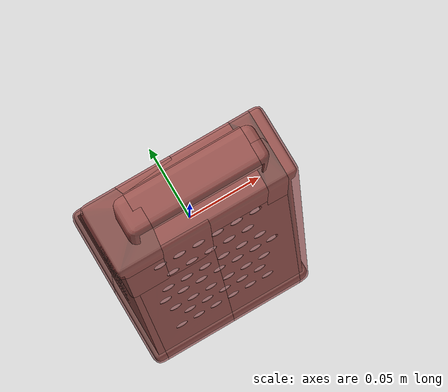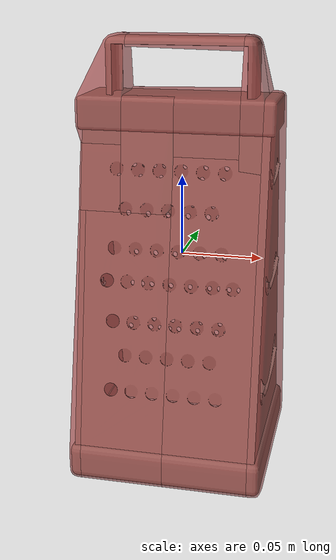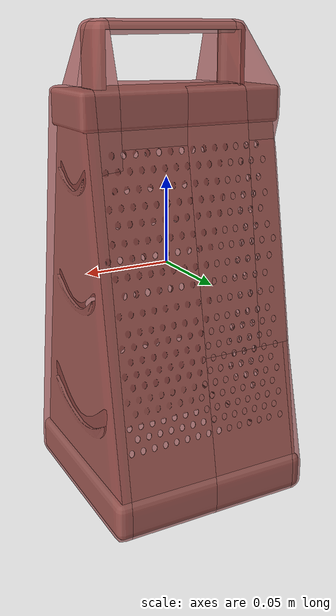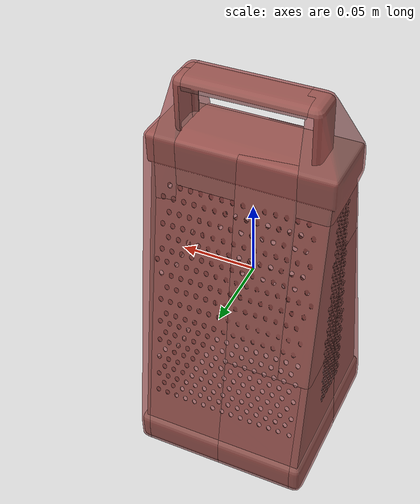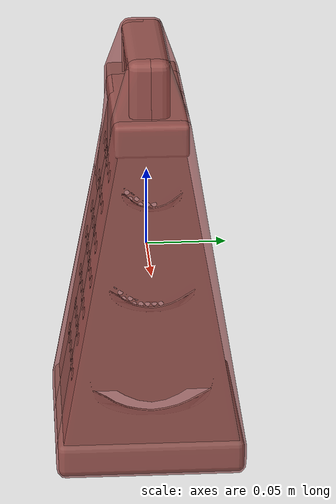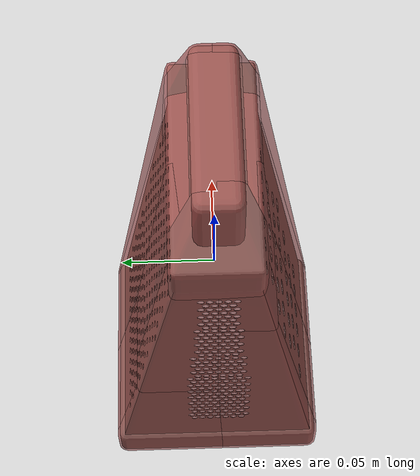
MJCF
<mujoco model="model">
  <option timestep="0.002" gravity="0.0 0.0 -9.81"/>
  <compiler angle="radian"/>
  <asset>
    <mesh file="visual/CheeseGrater009.obj" name="CheeseGrater009_vis"/>
    <texture file="visual/T_BC001.png" name="CheeseGrater009_material" type="2d"/>
    <material name="CheeseGrater009_material" rgba="1 1 1 1.0" texture="CheeseGrater009_material" shininess="0.5" specular="0.3103448502657381"/>
    <mesh file="collision/collision_mesh_collision_0.obj" name="CheeseGrater009_collision_mesh_0"/>
    <mesh file="collision/collision_mesh_collision_1.obj" name="CheeseGrater009_collision_mesh_1"/>
    <mesh file="collision/collision_mesh_collision_2.obj" name="CheeseGrater009_collision_mesh_2"/>
    <mesh file="collision/collision_mesh_collision_3.obj" name="CheeseGrater009_collision_mesh_3"/>
    <mesh file="collision/collision_mesh_collision_4.obj" name="CheeseGrater009_collision_mesh_4"/>
    <mesh file="collision/collision_mesh_collision_5.obj" name="CheeseGrater009_collision_mesh_5"/>
    <mesh file="collision/collision_mesh_collision_6.obj" name="CheeseGrater009_collision_mesh_6"/>
    <mesh file="collision/collision_mesh_collision_7.obj" name="CheeseGrater009_collision_mesh_7"/>
    <mesh file="collision/collision_mesh_collision_8.obj" name="CheeseGrater009_collision_mesh_8"/>
    <mesh file="collision/collision_mesh_collision_9.obj" name="CheeseGrater009_collision_mesh_9"/>
    <mesh file="collision/collision_mesh_collision_10.obj" name="CheeseGrater009_collision_mesh_10"/>
    <mesh file="collision/collision_mesh_collision_11.obj" name="CheeseGrater009_collision_mesh_11"/>
    <mesh file="collision/collision_mesh_collision_12.obj" name="CheeseGrater009_collision_mesh_12"/>
    <mesh file="collision/collision_mesh_collision_13.obj" name="CheeseGrater009_collision_mesh_13"/>
    <mesh file="collision/collision_mesh_collision_14.obj" name="CheeseGrater009_collision_mesh_14"/>
    <mesh file="collision/collision_mesh_collision_15.obj" name="CheeseGrater009_collision_mesh_15"/>
  </asset>
  <default>
    <default class="visual">
      <geom conaffinity="0" contype="0" group="1" type="mesh"/>
    </default>
    <default class="collision">
      <geom group="0" rgba="0.5 0 0 0.5" density="1.0" solref="0.004 1" solimp="0.998 0.998 0.001"/>
    </default>
    <default class="spawn">
      <geom group="0" rgba="1 1 1 0.5" contype="0" conaffinity="0"/>
      <site group="0" rgba="1 1 1 0.5"/>
    </default>
    <default class="region">
      <geom group="1" conaffinity="0" contype="0" rgba="0 1 0 0" mass="0"/>
    </default>
  </default>
  <worldbody>
    <body>
      <body name="object">
        <geom mesh="CheeseGrater009_vis" type="mesh" solimp="0.998 0.998 0.001" solref="0.001 1" friction="0.95 0.3 0.1" class="visual" material="CheeseGrater009_material"/>
        <geom class="region" name="reg_bbox" type="box" pos="-4.4000000000085637e-07 -5.349999999994248e-07 0.00020672500000000482" size="0.061192449999999995 0.059885855 0.134889675"/>
        <geom mesh="CheeseGrater009_collision_mesh_0" type="mesh" class="collision"/>
        <geom mesh="CheeseGrater009_collision_mesh_1" type="mesh" class="collision"/>
        <geom mesh="CheeseGrater009_collision_mesh_2" type="mesh" class="collision"/>
        <geom mesh="CheeseGrater009_collision_mesh_3" type="mesh" class="collision"/>
        <geom mesh="CheeseGrater009_collision_mesh_4" type="mesh" class="collision"/>
        <geom mesh="CheeseGrater009_collision_mesh_5" type="mesh" class="collision"/>
        <geom mesh="CheeseGrater009_collision_mesh_6" type="mesh" class="collision"/>
        <geom mesh="CheeseGrater009_collision_mesh_7" type="mesh" class="collision"/>
        <geom mesh="CheeseGrater009_collision_mesh_8" type="mesh" class="collision"/>
        <geom mesh="CheeseGrater009_collision_mesh_9" type="mesh" class="collision"/>
        <geom mesh="CheeseGrater009_collision_mesh_10" type="mesh" class="collision"/>
        <geom mesh="CheeseGrater009_collision_mesh_11" type="mesh" class="collision"/>
        <geom mesh="CheeseGrater009_collision_mesh_12" type="mesh" class="collision"/>
        <geom mesh="CheeseGrater009_collision_mesh_13" type="mesh" class="collision"/>
        <geom mesh="CheeseGrater009_collision_mesh_14" type="mesh" class="collision"/>
        <geom mesh="CheeseGrater009_collision_mesh_15" type="mesh" class="collision"/>
      </body>
    </body>
  </worldbody>
  <actuator/>
</mujoco>
